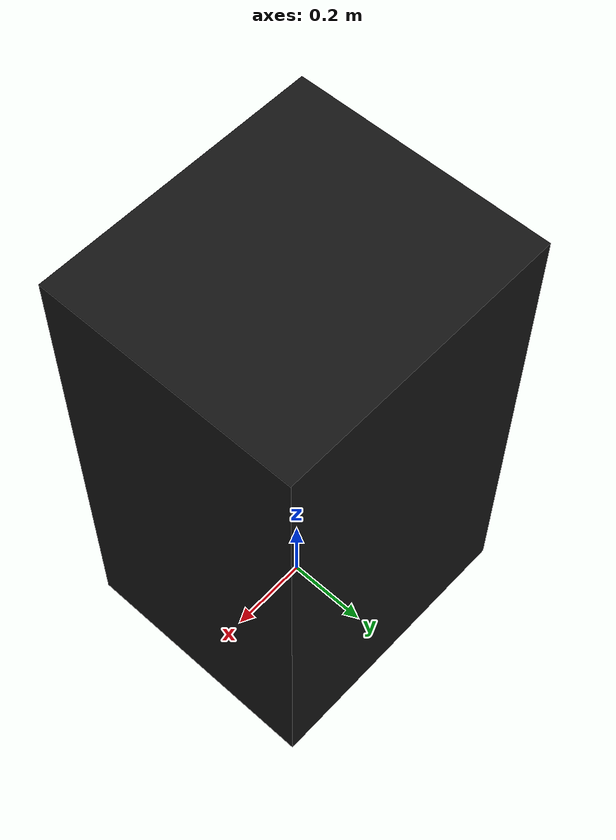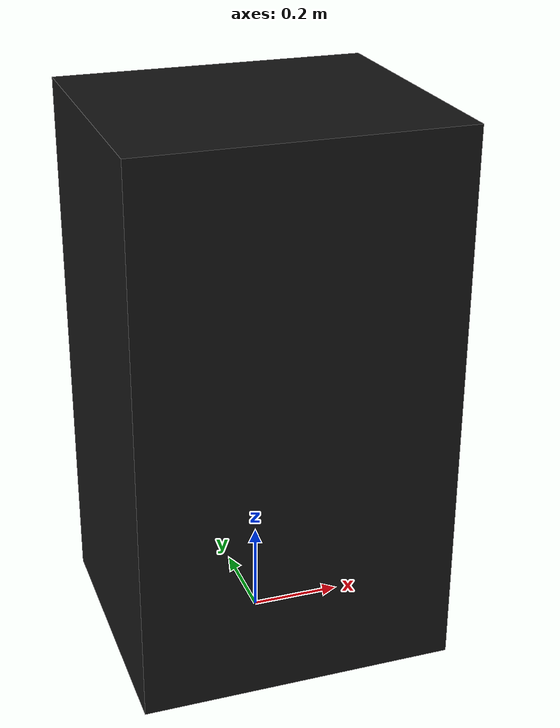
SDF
<?xml version="1.0"?>
<sdf version="1.9">
  <model name="room314_tiagobox">
    <static>true</static>
    <link name="room314_tiagobox_link">
      <visual name="room314_tiagobox_visual">
        <pose>-0.345 -0.305 0 0 0 0</pose>
        <geometry>
          <mesh>
            <uri>model://room314_tiagobox/meshes/tiagobox.stl</uri>
          </mesh>
        </geometry>
        <material>
          <ambient>0.08 0.08 0.08 1.0</ambient>
          <diffuse>0.08 0.08 0.08 1.0</diffuse>
          <specular>0.06 0.06 0.06 1.0</specular>
          <emissive>0.0 0.0 0.0 0.0</emissive>
        </material>
      </visual>
      <collision name="room314_tiagobox_collision">
        <pose>-0.345 -0.305 0 0 0 0</pose>
        <geometry>
          <mesh>
            <uri>model://room314_tiagobox/meshes/tiagobox.stl</uri>
          </mesh>
        </geometry>
      </collision>
    </link>
  </model>
</sdf>
